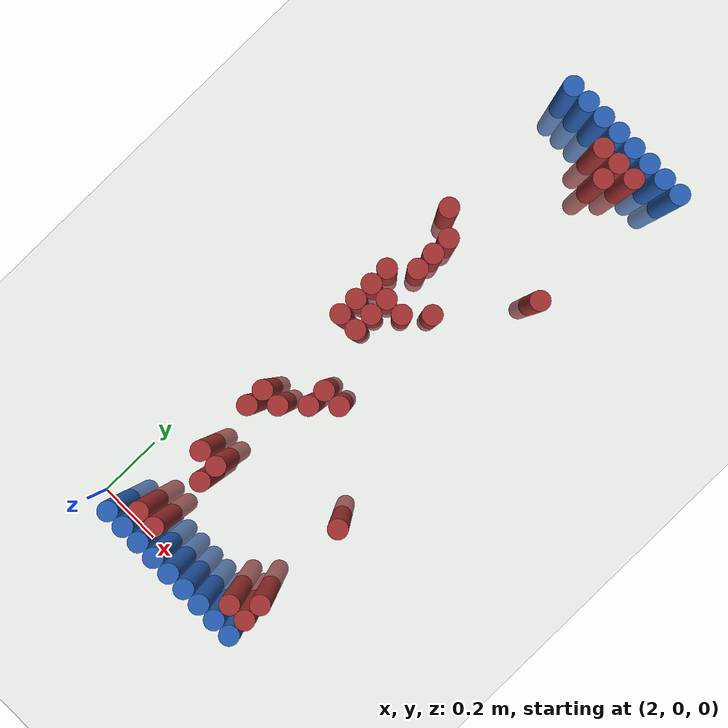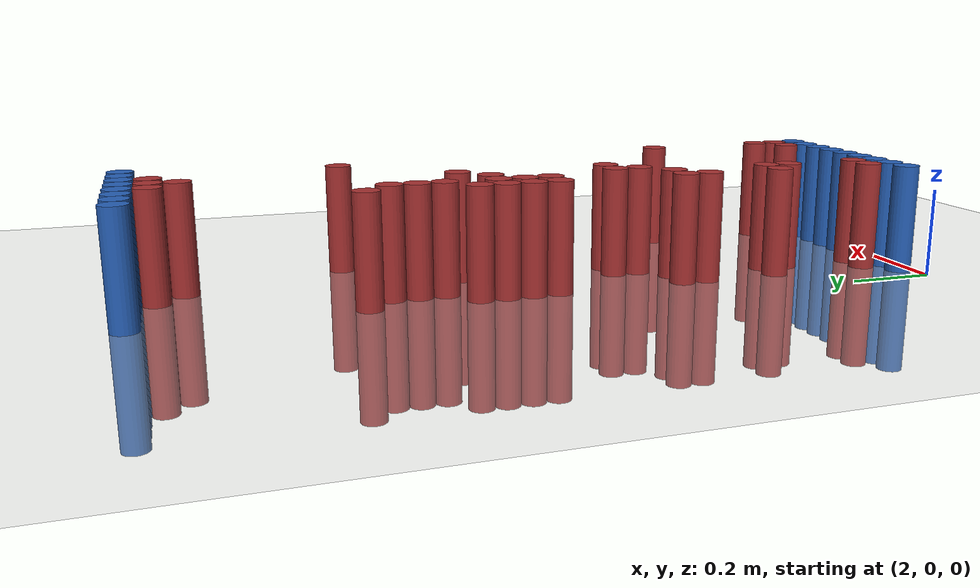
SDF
<sdf version="1.6">
 <world name="default">
  <model name="ground_plane">
   <static>1</static>
   <link name="link">
    <collision name="collision">
     <geometry><plane><normal>0 0 1</normal><size>100 100</size></plane></geometry>
     <surface><friction><ode><mu>100</mu><mu2>50</mu2></ode></friction></surface>
    </collision>
    <visual name="visual">
     <cast_shadows>0</cast_shadows>
     <geometry><plane><normal>0 0 1</normal><size>100 100</size></plane></geometry>
     <material>
      <script><uri>file://media/materials/scripts/gazebo.material</uri><name>Gazebo/Grey</name></script>
     </material>
    </visual>
   </link>
  </model>
  <model name="unit_cylinder_96">
   <static>1</static>
   <pose>2.130000 1.770000 0.000000 0.000000 0.000000 0.000000</pose>
   <link name="link">
    <inertial>
     <mass>1</mass>
     <inertia><ixx>0.145833</ixx><ixy>0</ixy><ixz>0</ixz><iyy>0.145833</iyy><iyz>0</iyz><izz>0.125</izz></inertia>
    </inertial>
    <collision name="collision">
     <geometry><cylinder><radius>0.030000</radius><length>0.5</length></cylinder></geometry>
    </collision>
    <visual name="visual">
     <geometry><cylinder><radius>0.030000</radius><length>0.5</length></cylinder></geometry>
     <material>
      <ambient>0.152000 0.379000 0.720000 1</ambient>
      <diffuse>0.152000 0.379000 0.720000 1</diffuse>
     </material>
     <material>
      <script><name>Gazebo/Grey</name><uri>file://media/materials/scripts/gazebo.material</uri></script>
     </material>
    </visual>
   </link>
  </model>
  <model name="unit_cylinder_97">
   <static>1</static>
   <pose>2.190000 1.770000 0.000000 0.000000 0.000000 0.000000</pose>
   <link name="link">
    <inertial>
     <mass>1</mass>
     <inertia><ixx>0.145833</ixx><ixy>0</ixy><ixz>0</ixz><iyy>0.145833</iyy><iyz>0</iyz><izz>0.125</izz></inertia>
    </inertial>
    <collision name="collision">
     <geometry><cylinder><radius>0.030000</radius><length>0.5</length></cylinder></geometry>
    </collision>
    <visual name="visual">
     <geometry><cylinder><radius>0.030000</radius><length>0.5</length></cylinder></geometry>
     <material>
      <ambient>0.152000 0.379000 0.720000 1</ambient>
      <diffuse>0.152000 0.379000 0.720000 1</diffuse>
     </material>
     <material>
      <script><name>Gazebo/Grey</name><uri>file://media/materials/scripts/gazebo.material</uri></script>
     </material>
    </visual>
   </link>
  </model>
  <model name="unit_cylinder_98">
   <static>1</static>
   <pose>2.250000 1.770000 0.000000 0.000000 0.000000 0.000000</pose>
   <link name="link">
    <inertial>
     <mass>1</mass>
     <inertia><ixx>0.145833</ixx><ixy>0</ixy><ixz>0</ixz><iyy>0.145833</iyy><iyz>0</iyz><izz>0.125</izz></inertia>
    </inertial>
    <collision name="collision">
     <geometry><cylinder><radius>0.030000</radius><length>0.5</length></cylinder></geometry>
    </collision>
    <visual name="visual">
     <geometry><cylinder><radius>0.030000</radius><length>0.5</length></cylinder></geometry>
     <material>
      <ambient>0.152000 0.379000 0.720000 1</ambient>
      <diffuse>0.152000 0.379000 0.720000 1</diffuse>
     </material>
     <material>
      <script><name>Gazebo/Grey</name><uri>file://media/materials/scripts/gazebo.material</uri></script>
     </material>
    </visual>
   </link>
  </model>
  <model name="unit_cylinder_99">
   <static>1</static>
   <pose>2.310000 1.770000 0.000000 0.000000 0.000000 0.000000</pose>
   <link name="link">
    <inertial>
     <mass>1</mass>
     <inertia><ixx>0.145833</ixx><ixy>0</ixy><ixz>0</ixz><iyy>0.145833</iyy><iyz>0</iyz><izz>0.125</izz></inertia>
    </inertial>
    <collision name="collision">
     <geometry><cylinder><radius>0.030000</radius><length>0.5</length></cylinder></geometry>
    </collision>
    <visual name="visual">
     <geometry><cylinder><radius>0.030000</radius><length>0.5</length></cylinder></geometry>
     <material>
      <ambient>0.152000 0.379000 0.720000 1</ambient>
      <diffuse>0.152000 0.379000 0.720000 1</diffuse>
     </material>
     <material>
      <script><name>Gazebo/Grey</name><uri>file://media/materials/scripts/gazebo.material</uri></script>
     </material>
    </visual>
   </link>
  </model>
  <model name="unit_cylinder_100">
   <static>1</static>
   <pose>2.370000 1.770000 0.000000 0.000000 0.000000 0.000000</pose>
   <link name="link">
    <inertial>
     <mass>1</mass>
     <inertia><ixx>0.145833</ixx><ixy>0</ixy><ixz>0</ixz><iyy>0.145833</iyy><iyz>0</iyz><izz>0.125</izz></inertia>
    </inertial>
    <collision name="collision">
     <geometry><cylinder><radius>0.030000</radius><length>0.5</length></cylinder></geometry>
    </collision>
    <visual name="visual">
     <geometry><cylinder><radius>0.030000</radius><length>0.5</length></cylinder></geometry>
     <material>
      <ambient>0.152000 0.379000 0.720000 1</ambient>
      <diffuse>0.152000 0.379000 0.720000 1</diffuse>
     </material>
     <material>
      <script><name>Gazebo/Grey</name><uri>file://media/materials/scripts/gazebo.material</uri></script>
     </material>
    </visual>
   </link>
  </model>
  <model name="unit_cylinder_101">
   <static>1</static>
   <pose>2.430000 1.770000 0.000000 0.000000 0.000000 0.000000</pose>
   <link name="link">
    <inertial>
     <mass>1</mass>
     <inertia><ixx>0.145833</ixx><ixy>0</ixy><ixz>0</ixz><iyy>0.145833</iyy><iyz>0</iyz><izz>0.125</izz></inertia>
    </inertial>
    <collision name="collision">
     <geometry><cylinder><radius>0.030000</radius><length>0.5</length></cylinder></geometry>
    </collision>
    <visual name="visual">
     <geometry><cylinder><radius>0.030000</radius><length>0.5</length></cylinder></geometry>
     <material>
      <ambient>0.152000 0.379000 0.720000 1</ambient>
      <diffuse>0.152000 0.379000 0.720000 1</diffuse>
     </material>
     <material>
      <script><name>Gazebo/Grey</name><uri>file://media/materials/scripts/gazebo.material</uri></script>
     </material>
    </visual>
   </link>
  </model>
  <model name="unit_cylinder_102">
   <static>1</static>
   <pose>2.490000 1.770000 0.000000 0.000000 0.000000 0.000000</pose>
   <link name="link">
    <inertial>
     <mass>1</mass>
     <inertia><ixx>0.145833</ixx><ixy>0</ixy><ixz>0</ixz><iyy>0.145833</iyy><iyz>0</iyz><izz>0.125</izz></inertia>
    </inertial>
    <collision name="collision">
     <geometry><cylinder><radius>0.030000</radius><length>0.5</length></cylinder></geometry>
    </collision>
    <visual name="visual">
     <geometry><cylinder><radius>0.030000</radius><length>0.5</length></cylinder></geometry>
     <material>
      <ambient>0.152000 0.379000 0.720000 1</ambient>
      <diffuse>0.152000 0.379000 0.720000 1</diffuse>
     </material>
     <material>
      <script><name>Gazebo/Grey</name><uri>file://media/materials/scripts/gazebo.material</uri></script>
     </material>
    </visual>
   </link>
  </model>
  <model name="unit_cylinder_103">
   <static>1</static>
   <pose>2.550000 1.770000 0.000000 0.000000 0.000000 0.000000</pose>
   <link name="link">
    <inertial>
     <mass>1</mass>
     <inertia><ixx>0.145833</ixx><ixy>0</ixy><ixz>0</ixz><iyy>0.145833</iyy><iyz>0</iyz><izz>0.125</izz></inertia>
    </inertial>
    <collision name="collision">
     <geometry><cylinder><radius>0.030000</radius><length>0.5</length></cylinder></geometry>
    </collision>
    <visual name="visual">
     <geometry><cylinder><radius>0.030000</radius><length>0.5</length></cylinder></geometry>
     <material>
      <ambient>0.152000 0.379000 0.720000 1</ambient>
      <diffuse>0.152000 0.379000 0.720000 1</diffuse>
     </material>
     <material>
      <script><name>Gazebo/Grey</name><uri>file://media/materials/scripts/gazebo.material</uri></script>
     </material>
    </visual>
   </link>
  </model>
  <model name="unit_cylinder_125">
   <static>1</static>
   <pose>2.310000 1.710000 0.000000 0.000000 0.000000 0.000000</pose>
   <link name="link">
    <inertial>
     <mass>1</mass>
     <inertia><ixx>0.145833</ixx><ixy>0</ixy><ixz>0</ixz><iyy>0.145833</iyy><iyz>0</iyz><izz>0.125</izz></inertia>
    </inertial>
    <collision name="collision">
     <geometry><cylinder><radius>0.030000</radius><length>0.5</length></cylinder></geometry>
    </collision>
    <visual name="visual">
     <geometry><cylinder><radius>0.030000</radius><length>0.5</length></cylinder></geometry>
     <material>
      <ambient>0.648000 0.192000 0.192000 1</ambient>
      <diffuse>0.648000 0.192000 0.192000 1</diffuse>
     </material>
     <material>
      <script><name>Gazebo/Grey</name><uri>file://media/materials/scripts/gazebo.material</uri></script>
     </material>
    </visual>
   </link>
  </model>
  <model name="unit_cylinder_126">
   <static>1</static>
   <pose>2.370000 1.710000 0.000000 0.000000 0.000000 0.000000</pose>
   <link name="link">
    <inertial>
     <mass>1</mass>
     <inertia><ixx>0.145833</ixx><ixy>0</ixy><ixz>0</ixz><iyy>0.145833</iyy><iyz>0</iyz><izz>0.125</izz></inertia>
    </inertial>
    <collision name="collision">
     <geometry><cylinder><radius>0.030000</radius><length>0.5</length></cylinder></geometry>
    </collision>
    <visual name="visual">
     <geometry><cylinder><radius>0.030000</radius><length>0.5</length></cylinder></geometry>
     <material>
      <ambient>0.648000 0.192000 0.192000 1</ambient>
      <diffuse>0.648000 0.192000 0.192000 1</diffuse>
     </material>
     <material>
      <script><name>Gazebo/Grey</name><uri>file://media/materials/scripts/gazebo.material</uri></script>
     </material>
    </visual>
   </link>
  </model>
  <model name="unit_cylinder_127">
   <static>1</static>
   <pose>2.430000 1.710000 0.000000 0.000000 0.000000 0.000000</pose>
   <link name="link">
    <inertial>
     <mass>1</mass>
     <inertia><ixx>0.145833</ixx><ixy>0</ixy><ixz>0</ixz><iyy>0.145833</iyy><iyz>0</iyz><izz>0.125</izz></inertia>
    </inertial>
    <collision name="collision">
     <geometry><cylinder><radius>0.030000</radius><length>0.5</length></cylinder></geometry>
    </collision>
    <visual name="visual">
     <geometry><cylinder><radius>0.030000</radius><length>0.5</length></cylinder></geometry>
     <material>
      <ambient>0.648000 0.192000 0.192000 1</ambient>
      <diffuse>0.648000 0.192000 0.192000 1</diffuse>
     </material>
     <material>
      <script><name>Gazebo/Grey</name><uri>file://media/materials/scripts/gazebo.material</uri></script>
     </material>
    </visual>
   </link>
  </model>
  <model name="unit_cylinder_143">
   <static>1</static>
   <pose>2.370000 1.650000 0.000000 0.000000 0.000000 0.000000</pose>
   <link name="link">
    <inertial>
     <mass>1</mass>
     <inertia><ixx>0.145833</ixx><ixy>0</ixy><ixz>0</ixz><iyy>0.145833</iyy><iyz>0</iyz><izz>0.125</izz></inertia>
    </inertial>
    <collision name="collision">
     <geometry><cylinder><radius>0.030000</radius><length>0.5</length></cylinder></geometry>
    </collision>
    <visual name="visual">
     <geometry><cylinder><radius>0.030000</radius><length>0.5</length></cylinder></geometry>
     <material>
      <ambient>0.648000 0.192000 0.192000 1</ambient>
      <diffuse>0.648000 0.192000 0.192000 1</diffuse>
     </material>
     <material>
      <script><name>Gazebo/Grey</name><uri>file://media/materials/scripts/gazebo.material</uri></script>
     </material>
    </visual>
   </link>
  </model>
  <model name="unit_cylinder_164">
   <static>1</static>
   <pose>2.130000 1.290000 0.000000 0.000000 0.000000 0.000000</pose>
   <link name="link">
    <inertial>
     <mass>1</mass>
     <inertia><ixx>0.145833</ixx><ixy>0</ixy><ixz>0</ixz><iyy>0.145833</iyy><iyz>0</iyz><izz>0.125</izz></inertia>
    </inertial>
    <collision name="collision">
     <geometry><cylinder><radius>0.030000</radius><length>0.5</length></cylinder></geometry>
    </collision>
    <visual name="visual">
     <geometry><cylinder><radius>0.030000</radius><length>0.5</length></cylinder></geometry>
     <material>
      <ambient>0.648000 0.192000 0.192000 1</ambient>
      <diffuse>0.648000 0.192000 0.192000 1</diffuse>
     </material>
     <material>
      <script><name>Gazebo/Grey</name><uri>file://media/materials/scripts/gazebo.material</uri></script>
     </material>
    </visual>
   </link>
  </model>
  <model name="unit_cylinder_165">
   <static>1</static>
   <pose>2.490000 1.290000 0.000000 0.000000 0.000000 0.000000</pose>
   <link name="link">
    <inertial>
     <mass>1</mass>
     <inertia><ixx>0.145833</ixx><ixy>0</ixy><ixz>0</ixz><iyy>0.145833</iyy><iyz>0</iyz><izz>0.125</izz></inertia>
    </inertial>
    <collision name="collision">
     <geometry><cylinder><radius>0.030000</radius><length>0.5</length></cylinder></geometry>
    </collision>
    <visual name="visual">
     <geometry><cylinder><radius>0.030000</radius><length>0.5</length></cylinder></geometry>
     <material>
      <ambient>0.648000 0.192000 0.192000 1</ambient>
      <diffuse>0.648000 0.192000 0.192000 1</diffuse>
     </material>
     <material>
      <script><name>Gazebo/Grey</name><uri>file://media/materials/scripts/gazebo.material</uri></script>
     </material>
    </visual>
   </link>
  </model>
  <model name="unit_cylinder_169">
   <static>1</static>
   <pose>2.190000 1.230000 0.000000 0.000000 0.000000 0.000000</pose>
   <link name="link">
    <inertial>
     <mass>1</mass>
     <inertia><ixx>0.145833</ixx><ixy>0</ixy><ixz>0</ixz><iyy>0.145833</iyy><iyz>0</iyz><izz>0.125</izz></inertia>
    </inertial>
    <collision name="collision">
     <geometry><cylinder><radius>0.030000</radius><length>0.5</length></cylinder></geometry>
    </collision>
    <visual name="visual">
     <geometry><cylinder><radius>0.030000</radius><length>0.5</length></cylinder></geometry>
     <material>
      <ambient>0.648000 0.192000 0.192000 1</ambient>
      <diffuse>0.648000 0.192000 0.192000 1</diffuse>
     </material>
     <material>
      <script><name>Gazebo/Grey</name><uri>file://media/materials/scripts/gazebo.material</uri></script>
     </material>
    </visual>
   </link>
  </model>
  <model name="unit_cylinder_172">
   <static>1</static>
   <pose>2.190000 1.170000 0.000000 0.000000 0.000000 0.000000</pose>
   <link name="link">
    <inertial>
     <mass>1</mass>
     <inertia><ixx>0.145833</ixx><ixy>0</ixy><ixz>0</ixz><iyy>0.145833</iyy><iyz>0</iyz><izz>0.125</izz></inertia>
    </inertial>
    <collision name="collision">
     <geometry><cylinder><radius>0.030000</radius><length>0.5</length></cylinder></geometry>
    </collision>
    <visual name="visual">
     <geometry><cylinder><radius>0.030000</radius><length>0.5</length></cylinder></geometry>
     <material>
      <ambient>0.648000 0.192000 0.192000 1</ambient>
      <diffuse>0.648000 0.192000 0.192000 1</diffuse>
     </material>
     <material>
      <script><name>Gazebo/Grey</name><uri>file://media/materials/scripts/gazebo.material</uri></script>
     </material>
    </visual>
   </link>
  </model>
  <model name="unit_cylinder_177">
   <static>1</static>
   <pose>2.190000 1.110000 0.000000 0.000000 0.000000 0.000000</pose>
   <link name="link">
    <inertial>
     <mass>1</mass>
     <inertia><ixx>0.145833</ixx><ixy>0</ixy><ixz>0</ixz><iyy>0.145833</iyy><iyz>0</iyz><izz>0.125</izz></inertia>
    </inertial>
    <collision name="collision">
     <geometry><cylinder><radius>0.030000</radius><length>0.5</length></cylinder></geometry>
    </collision>
    <visual name="visual">
     <geometry><cylinder><radius>0.030000</radius><length>0.5</length></cylinder></geometry>
     <material>
      <ambient>0.648000 0.192000 0.192000 1</ambient>
      <diffuse>0.648000 0.192000 0.192000 1</diffuse>
     </material>
     <material>
      <script><name>Gazebo/Grey</name><uri>file://media/materials/scripts/gazebo.material</uri></script>
     </material>
    </visual>
   </link>
  </model>
  <model name="unit_cylinder_182">
   <static>1</static>
   <pose>2.130000 1.050000 0.000000 0.000000 0.000000 0.000000</pose>
   <link name="link">
    <inertial>
     <mass>1</mass>
     <inertia><ixx>0.145833</ixx><ixy>0</ixy><ixz>0</ixz><iyy>0.145833</iyy><iyz>0</iyz><izz>0.125</izz></inertia>
    </inertial>
    <collision name="collision">
     <geometry><cylinder><radius>0.030000</radius><length>0.5</length></cylinder></geometry>
    </collision>
    <visual name="visual">
     <geometry><cylinder><radius>0.030000</radius><length>0.5</length></cylinder></geometry>
     <material>
      <ambient>0.648000 0.192000 0.192000 1</ambient>
      <diffuse>0.648000 0.192000 0.192000 1</diffuse>
     </material>
     <material>
      <script><name>Gazebo/Grey</name><uri>file://media/materials/scripts/gazebo.material</uri></script>
     </material>
    </visual>
   </link>
  </model>
  <model name="unit_cylinder_183">
   <static>1</static>
   <pose>2.310000 1.050000 0.000000 0.000000 0.000000 0.000000</pose>
   <link name="link">
    <inertial>
     <mass>1</mass>
     <inertia><ixx>0.145833</ixx><ixy>0</ixy><ixz>0</ixz><iyy>0.145833</iyy><iyz>0</iyz><izz>0.125</izz></inertia>
    </inertial>
    <collision name="collision">
     <geometry><cylinder><radius>0.030000</radius><length>0.5</length></cylinder></geometry>
    </collision>
    <visual name="visual">
     <geometry><cylinder><radius>0.030000</radius><length>0.5</length></cylinder></geometry>
     <material>
      <ambient>0.648000 0.192000 0.192000 1</ambient>
      <diffuse>0.648000 0.192000 0.192000 1</diffuse>
     </material>
     <material>
      <script><name>Gazebo/Grey</name><uri>file://media/materials/scripts/gazebo.material</uri></script>
     </material>
    </visual>
   </link>
  </model>
  <model name="unit_cylinder_187">
   <static>1</static>
   <pose>2.130000 0.990000 0.000000 0.000000 0.000000 0.000000</pose>
   <link name="link">
    <inertial>
     <mass>1</mass>
     <inertia><ixx>0.145833</ixx><ixy>0</ixy><ixz>0</ixz><iyy>0.145833</iyy><iyz>0</iyz><izz>0.125</izz></inertia>
    </inertial>
    <collision name="collision">
     <geometry><cylinder><radius>0.030000</radius><length>0.5</length></cylinder></geometry>
    </collision>
    <visual name="visual">
     <geometry><cylinder><radius>0.030000</radius><length>0.5</length></cylinder></geometry>
     <material>
      <ambient>0.648000 0.192000 0.192000 1</ambient>
      <diffuse>0.648000 0.192000 0.192000 1</diffuse>
     </material>
     <material>
      <script><name>Gazebo/Grey</name><uri>file://media/materials/scripts/gazebo.material</uri></script>
     </material>
    </visual>
   </link>
  </model>
  <model name="unit_cylinder_188">
   <static>1</static>
   <pose>2.190000 0.990000 0.000000 0.000000 0.000000 0.000000</pose>
   <link name="link">
    <inertial>
     <mass>1</mass>
     <inertia><ixx>0.145833</ixx><ixy>0</ixy><ixz>0</ixz><iyy>0.145833</iyy><iyz>0</iyz><izz>0.125</izz></inertia>
    </inertial>
    <collision name="collision">
     <geometry><cylinder><radius>0.030000</radius><length>0.5</length></cylinder></geometry>
    </collision>
    <visual name="visual">
     <geometry><cylinder><radius>0.030000</radius><length>0.5</length></cylinder></geometry>
     <material>
      <ambient>0.648000 0.192000 0.192000 1</ambient>
      <diffuse>0.648000 0.192000 0.192000 1</diffuse>
     </material>
     <material>
      <script><name>Gazebo/Grey</name><uri>file://media/materials/scripts/gazebo.material</uri></script>
     </material>
    </visual>
   </link>
  </model>
  <model name="unit_cylinder_189">
   <static>1</static>
   <pose>2.250000 0.990000 0.000000 0.000000 0.000000 0.000000</pose>
   <link name="link">
    <inertial>
     <mass>1</mass>
     <inertia><ixx>0.145833</ixx><ixy>0</ixy><ixz>0</ixz><iyy>0.145833</iyy><iyz>0</iyz><izz>0.125</izz></inertia>
    </inertial>
    <collision name="collision">
     <geometry><cylinder><radius>0.030000</radius><length>0.5</length></cylinder></geometry>
    </collision>
    <visual name="visual">
     <geometry><cylinder><radius>0.030000</radius><length>0.5</length></cylinder></geometry>
     <material>
      <ambient>0.648000 0.192000 0.192000 1</ambient>
      <diffuse>0.648000 0.192000 0.192000 1</diffuse>
     </material>
     <material>
      <script><name>Gazebo/Grey</name><uri>file://media/materials/scripts/gazebo.material</uri></script>
     </material>
    </visual>
   </link>
  </model>
  <model name="unit_cylinder_196">
   <static>1</static>
   <pose>2.130000 0.930000 0.000000 0.000000 0.000000 0.000000</pose>
   <link name="link">
    <inertial>
     <mass>1</mass>
     <inertia><ixx>0.145833</ixx><ixy>0</ixy><ixz>0</ixz><iyy>0.145833</iyy><iyz>0</iyz><izz>0.125</izz></inertia>
    </inertial>
    <collision name="collision">
     <geometry><cylinder><radius>0.030000</radius><length>0.5</length></cylinder></geometry>
    </collision>
    <visual name="visual">
     <geometry><cylinder><radius>0.030000</radius><length>0.5</length></cylinder></geometry>
     <material>
      <ambient>0.648000 0.192000 0.192000 1</ambient>
      <diffuse>0.648000 0.192000 0.192000 1</diffuse>
     </material>
     <material>
      <script><name>Gazebo/Grey</name><uri>file://media/materials/scripts/gazebo.material</uri></script>
     </material>
    </visual>
   </link>
  </model>
  <model name="unit_cylinder_197">
   <static>1</static>
   <pose>2.190000 0.930000 0.000000 0.000000 0.000000 0.000000</pose>
   <link name="link">
    <inertial>
     <mass>1</mass>
     <inertia><ixx>0.145833</ixx><ixy>0</ixy><ixz>0</ixz><iyy>0.145833</iyy><iyz>0</iyz><izz>0.125</izz></inertia>
    </inertial>
    <collision name="collision">
     <geometry><cylinder><radius>0.030000</radius><length>0.5</length></cylinder></geometry>
    </collision>
    <visual name="visual">
     <geometry><cylinder><radius>0.030000</radius><length>0.5</length></cylinder></geometry>
     <material>
      <ambient>0.648000 0.192000 0.192000 1</ambient>
      <diffuse>0.648000 0.192000 0.192000 1</diffuse>
     </material>
     <material>
      <script><name>Gazebo/Grey</name><uri>file://media/materials/scripts/gazebo.material</uri></script>
     </material>
    </visual>
   </link>
  </model>
  <model name="unit_cylinder_204">
   <static>1</static>
   <pose>2.130000 0.870000 0.000000 0.000000 0.000000 0.000000</pose>
   <link name="link">
    <inertial>
     <mass>1</mass>
     <inertia><ixx>0.145833</ixx><ixy>0</ixy><ixz>0</ixz><iyy>0.145833</iyy><iyz>0</iyz><izz>0.125</izz></inertia>
    </inertial>
    <collision name="collision">
     <geometry><cylinder><radius>0.030000</radius><length>0.5</length></cylinder></geometry>
    </collision>
    <visual name="visual">
     <geometry><cylinder><radius>0.030000</radius><length>0.5</length></cylinder></geometry>
     <material>
      <ambient>0.648000 0.192000 0.192000 1</ambient>
      <diffuse>0.648000 0.192000 0.192000 1</diffuse>
     </material>
     <material>
      <script><name>Gazebo/Grey</name><uri>file://media/materials/scripts/gazebo.material</uri></script>
     </material>
    </visual>
   </link>
  </model>
  <model name="unit_cylinder_205">
   <static>1</static>
   <pose>2.190000 0.870000 0.000000 0.000000 0.000000 0.000000</pose>
   <link name="link">
    <inertial>
     <mass>1</mass>
     <inertia><ixx>0.145833</ixx><ixy>0</ixy><ixz>0</ixz><iyy>0.145833</iyy><iyz>0</iyz><izz>0.125</izz></inertia>
    </inertial>
    <collision name="collision">
     <geometry><cylinder><radius>0.030000</radius><length>0.5</length></cylinder></geometry>
    </collision>
    <visual name="visual">
     <geometry><cylinder><radius>0.030000</radius><length>0.5</length></cylinder></geometry>
     <material>
      <ambient>0.648000 0.192000 0.192000 1</ambient>
      <diffuse>0.648000 0.192000 0.192000 1</diffuse>
     </material>
     <material>
      <script><name>Gazebo/Grey</name><uri>file://media/materials/scripts/gazebo.material</uri></script>
     </material>
    </visual>
   </link>
  </model>
  <model name="unit_cylinder_219">
   <static>1</static>
   <pose>2.250000 0.690000 0.000000 0.000000 0.000000 0.000000</pose>
   <link name="link">
    <inertial>
     <mass>1</mass>
     <inertia><ixx>0.145833</ixx><ixy>0</ixy><ixz>0</ixz><iyy>0.145833</iyy><iyz>0</iyz><izz>0.125</izz></inertia>
    </inertial>
    <collision name="collision">
     <geometry><cylinder><radius>0.030000</radius><length>0.5</length></cylinder></geometry>
    </collision>
    <visual name="visual">
     <geometry><cylinder><radius>0.030000</radius><length>0.5</length></cylinder></geometry>
     <material>
      <ambient>0.648000 0.192000 0.192000 1</ambient>
      <diffuse>0.648000 0.192000 0.192000 1</diffuse>
     </material>
     <material>
      <script><name>Gazebo/Grey</name><uri>file://media/materials/scripts/gazebo.material</uri></script>
     </material>
    </visual>
   </link>
  </model>
  <model name="unit_cylinder_220">
   <static>1</static>
   <pose>2.310000 0.690000 0.000000 0.000000 0.000000 0.000000</pose>
   <link name="link">
    <inertial>
     <mass>1</mass>
     <inertia><ixx>0.145833</ixx><ixy>0</ixy><ixz>0</ixz><iyy>0.145833</iyy><iyz>0</iyz><izz>0.125</izz></inertia>
    </inertial>
    <collision name="collision">
     <geometry><cylinder><radius>0.030000</radius><length>0.5</length></cylinder></geometry>
    </collision>
    <visual name="visual">
     <geometry><cylinder><radius>0.030000</radius><length>0.5</length></cylinder></geometry>
     <material>
      <ambient>0.648000 0.192000 0.192000 1</ambient>
      <diffuse>0.648000 0.192000 0.192000 1</diffuse>
     </material>
     <material>
      <script><name>Gazebo/Grey</name><uri>file://media/materials/scripts/gazebo.material</uri></script>
     </material>
    </visual>
   </link>
  </model>
  <model name="unit_cylinder_223">
   <static>1</static>
   <pose>2.250000 0.630000 0.000000 0.000000 0.000000 0.000000</pose>
   <link name="link">
    <inertial>
     <mass>1</mass>
     <inertia><ixx>0.145833</ixx><ixy>0</ixy><ixz>0</ixz><iyy>0.145833</iyy><iyz>0</iyz><izz>0.125</izz></inertia>
    </inertial>
    <collision name="collision">
     <geometry><cylinder><radius>0.030000</radius><length>0.5</length></cylinder></geometry>
    </collision>
    <visual name="visual">
     <geometry><cylinder><radius>0.030000</radius><length>0.5</length></cylinder></geometry>
     <material>
      <ambient>0.648000 0.192000 0.192000 1</ambient>
      <diffuse>0.648000 0.192000 0.192000 1</diffuse>
     </material>
     <material>
      <script><name>Gazebo/Grey</name><uri>file://media/materials/scripts/gazebo.material</uri></script>
     </material>
    </visual>
   </link>
  </model>
  <model name="unit_cylinder_226">
   <static>1</static>
   <pose>2.130000 0.570000 0.000000 0.000000 0.000000 0.000000</pose>
   <link name="link">
    <inertial>
     <mass>1</mass>
     <inertia><ixx>0.145833</ixx><ixy>0</ixy><ixz>0</ixz><iyy>0.145833</iyy><iyz>0</iyz><izz>0.125</izz></inertia>
    </inertial>
    <collision name="collision">
     <geometry><cylinder><radius>0.030000</radius><length>0.5</length></cylinder></geometry>
    </collision>
    <visual name="visual">
     <geometry><cylinder><radius>0.030000</radius><length>0.5</length></cylinder></geometry>
     <material>
      <ambient>0.648000 0.192000 0.192000 1</ambient>
      <diffuse>0.648000 0.192000 0.192000 1</diffuse>
     </material>
     <material>
      <script><name>Gazebo/Grey</name><uri>file://media/materials/scripts/gazebo.material</uri></script>
     </material>
    </visual>
   </link>
  </model>
  <model name="unit_cylinder_227">
   <static>1</static>
   <pose>2.190000 0.570000 0.000000 0.000000 0.000000 0.000000</pose>
   <link name="link">
    <inertial>
     <mass>1</mass>
     <inertia><ixx>0.145833</ixx><ixy>0</ixy><ixz>0</ixz><iyy>0.145833</iyy><iyz>0</iyz><izz>0.125</izz></inertia>
    </inertial>
    <collision name="collision">
     <geometry><cylinder><radius>0.030000</radius><length>0.5</length></cylinder></geometry>
    </collision>
    <visual name="visual">
     <geometry><cylinder><radius>0.030000</radius><length>0.5</length></cylinder></geometry>
     <material>
      <ambient>0.648000 0.192000 0.192000 1</ambient>
      <diffuse>0.648000 0.192000 0.192000 1</diffuse>
     </material>
     <material>
      <script><name>Gazebo/Grey</name><uri>file://media/materials/scripts/gazebo.material</uri></script>
     </material>
    </visual>
   </link>
  </model>
  <model name="unit_cylinder_232">
   <static>1</static>
   <pose>2.130000 0.510000 0.000000 0.000000 0.000000 0.000000</pose>
   <link name="link">
    <inertial>
     <mass>1</mass>
     <inertia><ixx>0.145833</ixx><ixy>0</ixy><ixz>0</ixz><iyy>0.145833</iyy><iyz>0</iyz><izz>0.125</izz></inertia>
    </inertial>
    <collision name="collision">
     <geometry><cylinder><radius>0.030000</radius><length>0.5</length></cylinder></geometry>
    </collision>
    <visual name="visual">
     <geometry><cylinder><radius>0.030000</radius><length>0.5</length></cylinder></geometry>
     <material>
      <ambient>0.648000 0.192000 0.192000 1</ambient>
      <diffuse>0.648000 0.192000 0.192000 1</diffuse>
     </material>
     <material>
      <script><name>Gazebo/Grey</name><uri>file://media/materials/scripts/gazebo.material</uri></script>
     </material>
    </visual>
   </link>
  </model>
  <model name="unit_cylinder_236">
   <static>1</static>
   <pose>2.550000 0.450000 0.000000 0.000000 0.000000 0.000000</pose>
   <link name="link">
    <inertial>
     <mass>1</mass>
     <inertia><ixx>0.145833</ixx><ixy>0</ixy><ixz>0</ixz><iyy>0.145833</iyy><iyz>0</iyz><izz>0.125</izz></inertia>
    </inertial>
    <collision name="collision">
     <geometry><cylinder><radius>0.030000</radius><length>0.5</length></cylinder></geometry>
    </collision>
    <visual name="visual">
     <geometry><cylinder><radius>0.030000</radius><length>0.5</length></cylinder></geometry>
     <material>
      <ambient>0.648000 0.192000 0.192000 1</ambient>
      <diffuse>0.648000 0.192000 0.192000 1</diffuse>
     </material>
     <material>
      <script><name>Gazebo/Grey</name><uri>file://media/materials/scripts/gazebo.material</uri></script>
     </material>
    </visual>
   </link>
  </model>
  <model name="unit_cylinder_240">
   <static>1</static>
   <pose>2.130000 0.330000 0.000000 0.000000 0.000000 0.000000</pose>
   <link name="link">
    <inertial>
     <mass>1</mass>
     <inertia><ixx>0.145833</ixx><ixy>0</ixy><ixz>0</ixz><iyy>0.145833</iyy><iyz>0</iyz><izz>0.125</izz></inertia>
    </inertial>
    <collision name="collision">
     <geometry><cylinder><radius>0.030000</radius><length>0.5</length></cylinder></geometry>
    </collision>
    <visual name="visual">
     <geometry><cylinder><radius>0.030000</radius><length>0.5</length></cylinder></geometry>
     <material>
      <ambient>0.648000 0.192000 0.192000 1</ambient>
      <diffuse>0.648000 0.192000 0.192000 1</diffuse>
     </material>
     <material>
      <script><name>Gazebo/Grey</name><uri>file://media/materials/scripts/gazebo.material</uri></script>
     </material>
    </visual>
   </link>
  </model>
  <model name="unit_cylinder_241">
   <static>1</static>
   <pose>2.190000 0.330000 0.000000 0.000000 0.000000 0.000000</pose>
   <link name="link">
    <inertial>
     <mass>1</mass>
     <inertia><ixx>0.145833</ixx><ixy>0</ixy><ixz>0</ixz><iyy>0.145833</iyy><iyz>0</iyz><izz>0.125</izz></inertia>
    </inertial>
    <collision name="collision">
     <geometry><cylinder><radius>0.030000</radius><length>0.5</length></cylinder></geometry>
    </collision>
    <visual name="visual">
     <geometry><cylinder><radius>0.030000</radius><length>0.5</length></cylinder></geometry>
     <material>
      <ambient>0.648000 0.192000 0.192000 1</ambient>
      <diffuse>0.648000 0.192000 0.192000 1</diffuse>
     </material>
     <material>
      <script><name>Gazebo/Grey</name><uri>file://media/materials/scripts/gazebo.material</uri></script>
     </material>
    </visual>
   </link>
  </model>
  <model name="unit_cylinder_243">
   <static>1</static>
   <pose>2.190000 0.270000 0.000000 0.000000 0.000000 0.000000</pose>
   <link name="link">
    <inertial>
     <mass>1</mass>
     <inertia><ixx>0.145833</ixx><ixy>0</ixy><ixz>0</ixz><iyy>0.145833</iyy><iyz>0</iyz><izz>0.125</izz></inertia>
    </inertial>
    <collision name="collision">
     <geometry><cylinder><radius>0.030000</radius><length>0.5</length></cylinder></geometry>
    </collision>
    <visual name="visual">
     <geometry><cylinder><radius>0.030000</radius><length>0.5</length></cylinder></geometry>
     <material>
      <ambient>0.648000 0.192000 0.192000 1</ambient>
      <diffuse>0.648000 0.192000 0.192000 1</diffuse>
     </material>
     <material>
      <script><name>Gazebo/Grey</name><uri>file://media/materials/scripts/gazebo.material</uri></script>
     </material>
    </visual>
   </link>
  </model>
  <model name="unit_cylinder_249">
   <static>1</static>
   <pose>2.550000 0.150000 0.000000 0.000000 0.000000 0.000000</pose>
   <link name="link">
    <inertial>
     <mass>1</mass>
     <inertia><ixx>0.145833</ixx><ixy>0</ixy><ixz>0</ixz><iyy>0.145833</iyy><iyz>0</iyz><izz>0.125</izz></inertia>
    </inertial>
    <collision name="collision">
     <geometry><cylinder><radius>0.030000</radius><length>0.5</length></cylinder></geometry>
    </collision>
    <visual name="visual">
     <geometry><cylinder><radius>0.030000</radius><length>0.5</length></cylinder></geometry>
     <material>
      <ambient>0.648000 0.192000 0.192000 1</ambient>
      <diffuse>0.648000 0.192000 0.192000 1</diffuse>
     </material>
     <material>
      <script><name>Gazebo/Grey</name><uri>file://media/materials/scripts/gazebo.material</uri></script>
     </material>
    </visual>
   </link>
  </model>
  <model name="unit_cylinder_254">
   <static>1</static>
   <pose>2.130000 0.090000 0.000000 0.000000 0.000000 0.000000</pose>
   <link name="link">
    <inertial>
     <mass>1</mass>
     <inertia><ixx>0.145833</ixx><ixy>0</ixy><ixz>0</ixz><iyy>0.145833</iyy><iyz>0</iyz><izz>0.125</izz></inertia>
    </inertial>
    <collision name="collision">
     <geometry><cylinder><radius>0.030000</radius><length>0.5</length></cylinder></geometry>
    </collision>
    <visual name="visual">
     <geometry><cylinder><radius>0.030000</radius><length>0.5</length></cylinder></geometry>
     <material>
      <ambient>0.648000 0.192000 0.192000 1</ambient>
      <diffuse>0.648000 0.192000 0.192000 1</diffuse>
     </material>
     <material>
      <script><name>Gazebo/Grey</name><uri>file://media/materials/scripts/gazebo.material</uri></script>
     </material>
    </visual>
   </link>
  </model>
  <model name="unit_cylinder_255">
   <static>1</static>
   <pose>2.190000 0.090000 0.000000 0.000000 0.000000 0.000000</pose>
   <link name="link">
    <inertial>
     <mass>1</mass>
     <inertia><ixx>0.145833</ixx><ixy>0</ixy><ixz>0</ixz><iyy>0.145833</iyy><iyz>0</iyz><izz>0.125</izz></inertia>
    </inertial>
    <collision name="collision">
     <geometry><cylinder><radius>0.030000</radius><length>0.5</length></cylinder></geometry>
    </collision>
    <visual name="visual">
     <geometry><cylinder><radius>0.030000</radius><length>0.5</length></cylinder></geometry>
     <material>
      <ambient>0.648000 0.192000 0.192000 1</ambient>
      <diffuse>0.648000 0.192000 0.192000 1</diffuse>
     </material>
     <material>
      <script><name>Gazebo/Grey</name><uri>file://media/materials/scripts/gazebo.material</uri></script>
     </material>
    </visual>
   </link>
  </model>
  <model name="unit_cylinder_256">
   <static>1</static>
   <pose>2.490000 0.090000 0.000000 0.000000 0.000000 0.000000</pose>
   <link name="link">
    <inertial>
     <mass>1</mass>
     <inertia><ixx>0.145833</ixx><ixy>0</ixy><ixz>0</ixz><iyy>0.145833</iyy><iyz>0</iyz><izz>0.125</izz></inertia>
    </inertial>
    <collision name="collision">
     <geometry><cylinder><radius>0.030000</radius><length>0.5</length></cylinder></geometry>
    </collision>
    <visual name="visual">
     <geometry><cylinder><radius>0.030000</radius><length>0.5</length></cylinder></geometry>
     <material>
      <ambient>0.648000 0.192000 0.192000 1</ambient>
      <diffuse>0.648000 0.192000 0.192000 1</diffuse>
     </material>
     <material>
      <script><name>Gazebo/Grey</name><uri>file://media/materials/scripts/gazebo.material</uri></script>
     </material>
    </visual>
   </link>
  </model>
  <model name="unit_cylinder_257">
   <static>1</static>
   <pose>2.550000 0.090000 0.000000 0.000000 0.000000 0.000000</pose>
   <link name="link">
    <inertial>
     <mass>1</mass>
     <inertia><ixx>0.145833</ixx><ixy>0</ixy><ixz>0</ixz><iyy>0.145833</iyy><iyz>0</iyz><izz>0.125</izz></inertia>
    </inertial>
    <collision name="collision">
     <geometry><cylinder><radius>0.030000</radius><length>0.5</length></cylinder></geometry>
    </collision>
    <visual name="visual">
     <geometry><cylinder><radius>0.030000</radius><length>0.5</length></cylinder></geometry>
     <material>
      <ambient>0.648000 0.192000 0.192000 1</ambient>
      <diffuse>0.648000 0.192000 0.192000 1</diffuse>
     </material>
     <material>
      <script><name>Gazebo/Grey</name><uri>file://media/materials/scripts/gazebo.material</uri></script>
     </material>
    </visual>
   </link>
  </model>
  <model name="unit_cylinder_269">
   <static>1</static>
   <pose>2.070000 0.030000 0.000000 0.000000 0.000000 0.000000</pose>
   <link name="link">
    <inertial>
     <mass>1</mass>
     <inertia><ixx>0.145833</ixx><ixy>0</ixy><ixz>0</ixz><iyy>0.145833</iyy><iyz>0</iyz><izz>0.125</izz></inertia>
    </inertial>
    <collision name="collision">
     <geometry><cylinder><radius>0.030000</radius><length>0.5</length></cylinder></geometry>
    </collision>
    <visual name="visual">
     <geometry><cylinder><radius>0.030000</radius><length>0.5</length></cylinder></geometry>
     <material>
      <ambient>0.152000 0.379000 0.720000 1</ambient>
      <diffuse>0.152000 0.379000 0.720000 1</diffuse>
     </material>
     <material>
      <script><name>Gazebo/Grey</name><uri>file://media/materials/scripts/gazebo.material</uri></script>
     </material>
    </visual>
   </link>
  </model>
  <model name="unit_cylinder_270">
   <static>1</static>
   <pose>2.130000 0.030000 0.000000 0.000000 0.000000 0.000000</pose>
   <link name="link">
    <inertial>
     <mass>1</mass>
     <inertia><ixx>0.145833</ixx><ixy>0</ixy><ixz>0</ixz><iyy>0.145833</iyy><iyz>0</iyz><izz>0.125</izz></inertia>
    </inertial>
    <collision name="collision">
     <geometry><cylinder><radius>0.030000</radius><length>0.5</length></cylinder></geometry>
    </collision>
    <visual name="visual">
     <geometry><cylinder><radius>0.030000</radius><length>0.5</length></cylinder></geometry>
     <material>
      <ambient>0.152000 0.379000 0.720000 1</ambient>
      <diffuse>0.152000 0.379000 0.720000 1</diffuse>
     </material>
     <material>
      <script><name>Gazebo/Grey</name><uri>file://media/materials/scripts/gazebo.material</uri></script>
     </material>
    </visual>
   </link>
  </model>
  <model name="unit_cylinder_271">
   <static>1</static>
   <pose>2.190000 0.030000 0.000000 0.000000 0.000000 0.000000</pose>
   <link name="link">
    <inertial>
     <mass>1</mass>
     <inertia><ixx>0.145833</ixx><ixy>0</ixy><ixz>0</ixz><iyy>0.145833</iyy><iyz>0</iyz><izz>0.125</izz></inertia>
    </inertial>
    <collision name="collision">
     <geometry><cylinder><radius>0.030000</radius><length>0.5</length></cylinder></geometry>
    </collision>
    <visual name="visual">
     <geometry><cylinder><radius>0.030000</radius><length>0.5</length></cylinder></geometry>
     <material>
      <ambient>0.152000 0.379000 0.720000 1</ambient>
      <diffuse>0.152000 0.379000 0.720000 1</diffuse>
     </material>
     <material>
      <script><name>Gazebo/Grey</name><uri>file://media/materials/scripts/gazebo.material</uri></script>
     </material>
    </visual>
   </link>
  </model>
  <model name="unit_cylinder_272">
   <static>1</static>
   <pose>2.250000 0.030000 0.000000 0.000000 0.000000 0.000000</pose>
   <link name="link">
    <inertial>
     <mass>1</mass>
     <inertia><ixx>0.145833</ixx><ixy>0</ixy><ixz>0</ixz><iyy>0.145833</iyy><iyz>0</iyz><izz>0.125</izz></inertia>
    </inertial>
    <collision name="collision">
     <geometry><cylinder><radius>0.030000</radius><length>0.5</length></cylinder></geometry>
    </collision>
    <visual name="visual">
     <geometry><cylinder><radius>0.030000</radius><length>0.5</length></cylinder></geometry>
     <material>
      <ambient>0.152000 0.379000 0.720000 1</ambient>
      <diffuse>0.152000 0.379000 0.720000 1</diffuse>
     </material>
     <material>
      <script><name>Gazebo/Grey</name><uri>file://media/materials/scripts/gazebo.material</uri></script>
     </material>
    </visual>
   </link>
  </model>
  <model name="unit_cylinder_273">
   <static>1</static>
   <pose>2.310000 0.030000 0.000000 0.000000 0.000000 0.000000</pose>
   <link name="link">
    <inertial>
     <mass>1</mass>
     <inertia><ixx>0.145833</ixx><ixy>0</ixy><ixz>0</ixz><iyy>0.145833</iyy><iyz>0</iyz><izz>0.125</izz></inertia>
    </inertial>
    <collision name="collision">
     <geometry><cylinder><radius>0.030000</radius><length>0.5</length></cylinder></geometry>
    </collision>
    <visual name="visual">
     <geometry><cylinder><radius>0.030000</radius><length>0.5</length></cylinder></geometry>
     <material>
      <ambient>0.152000 0.379000 0.720000 1</ambient>
      <diffuse>0.152000 0.379000 0.720000 1</diffuse>
     </material>
     <material>
      <script><name>Gazebo/Grey</name><uri>file://media/materials/scripts/gazebo.material</uri></script>
     </material>
    </visual>
   </link>
  </model>
  <model name="unit_cylinder_274">
   <static>1</static>
   <pose>2.370000 0.030000 0.000000 0.000000 0.000000 0.000000</pose>
   <link name="link">
    <inertial>
     <mass>1</mass>
     <inertia><ixx>0.145833</ixx><ixy>0</ixy><ixz>0</ixz><iyy>0.145833</iyy><iyz>0</iyz><izz>0.125</izz></inertia>
    </inertial>
    <collision name="collision">
     <geometry><cylinder><radius>0.030000</radius><length>0.5</length></cylinder></geometry>
    </collision>
    <visual name="visual">
     <geometry><cylinder><radius>0.030000</radius><length>0.5</length></cylinder></geometry>
     <material>
      <ambient>0.152000 0.379000 0.720000 1</ambient>
      <diffuse>0.152000 0.379000 0.720000 1</diffuse>
     </material>
     <material>
      <script><name>Gazebo/Grey</name><uri>file://media/materials/scripts/gazebo.material</uri></script>
     </material>
    </visual>
   </link>
  </model>
  <model name="unit_cylinder_275">
   <static>1</static>
   <pose>2.430000 0.030000 0.000000 0.000000 0.000000 0.000000</pose>
   <link name="link">
    <inertial>
     <mass>1</mass>
     <inertia><ixx>0.145833</ixx><ixy>0</ixy><ixz>0</ixz><iyy>0.145833</iyy><iyz>0</iyz><izz>0.125</izz></inertia>
    </inertial>
    <collision name="collision">
     <geometry><cylinder><radius>0.030000</radius><length>0.5</length></cylinder></geometry>
    </collision>
    <visual name="visual">
     <geometry><cylinder><radius>0.030000</radius><length>0.5</length></cylinder></geometry>
     <material>
      <ambient>0.152000 0.379000 0.720000 1</ambient>
      <diffuse>0.152000 0.379000 0.720000 1</diffuse>
     </material>
     <material>
      <script><name>Gazebo/Grey</name><uri>file://media/materials/scripts/gazebo.material</uri></script>
     </material>
    </visual>
   </link>
  </model>
  <model name="unit_cylinder_276">
   <static>1</static>
   <pose>2.490000 0.030000 0.000000 0.000000 0.000000 0.000000</pose>
   <link name="link">
    <inertial>
     <mass>1</mass>
     <inertia><ixx>0.145833</ixx><ixy>0</ixy><ixz>0</ixz><iyy>0.145833</iyy><iyz>0</iyz><izz>0.125</izz></inertia>
    </inertial>
    <collision name="collision">
     <geometry><cylinder><radius>0.030000</radius><length>0.5</length></cylinder></geometry>
    </collision>
    <visual name="visual">
     <geometry><cylinder><radius>0.030000</radius><length>0.5</length></cylinder></geometry>
     <material>
      <ambient>0.152000 0.379000 0.720000 1</ambient>
      <diffuse>0.152000 0.379000 0.720000 1</diffuse>
     </material>
     <material>
      <script><name>Gazebo/Grey</name><uri>file://media/materials/scripts/gazebo.material</uri></script>
     </material>
    </visual>
   </link>
  </model>
  <model name="unit_cylinder_277">
   <static>1</static>
   <pose>2.550000 0.030000 0.000000 0.000000 0.000000 0.000000</pose>
   <link name="link">
    <inertial>
     <mass>1</mass>
     <inertia><ixx>0.145833</ixx><ixy>0</ixy><ixz>0</ixz><iyy>0.145833</iyy><iyz>0</iyz><izz>0.125</izz></inertia>
    </inertial>
    <collision name="collision">
     <geometry><cylinder><radius>0.030000</radius><length>0.5</length></cylinder></geometry>
    </collision>
    <visual name="visual">
     <geometry><cylinder><radius>0.030000</radius><length>0.5</length></cylinder></geometry>
     <material>
      <ambient>0.152000 0.379000 0.720000 1</ambient>
      <diffuse>0.152000 0.379000 0.720000 1</diffuse>
     </material>
     <material>
      <script><name>Gazebo/Grey</name><uri>file://media/materials/scripts/gazebo.material</uri></script>
     </material>
    </visual>
   </link>
  </model>
 </world>
</sdf>
